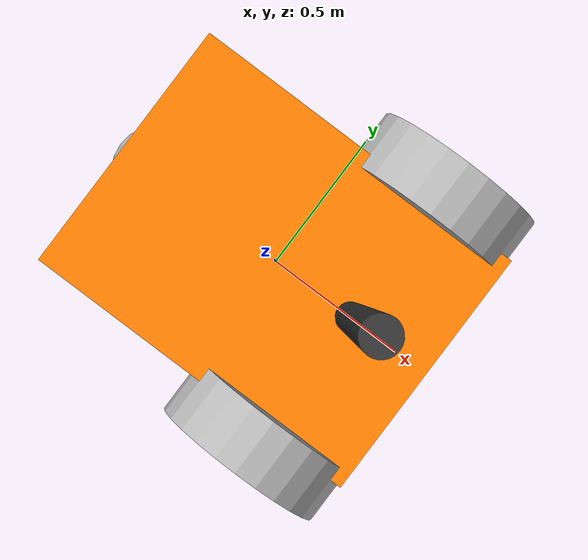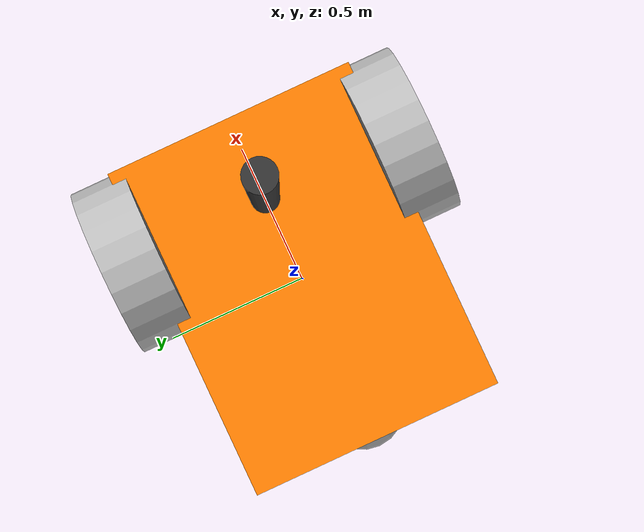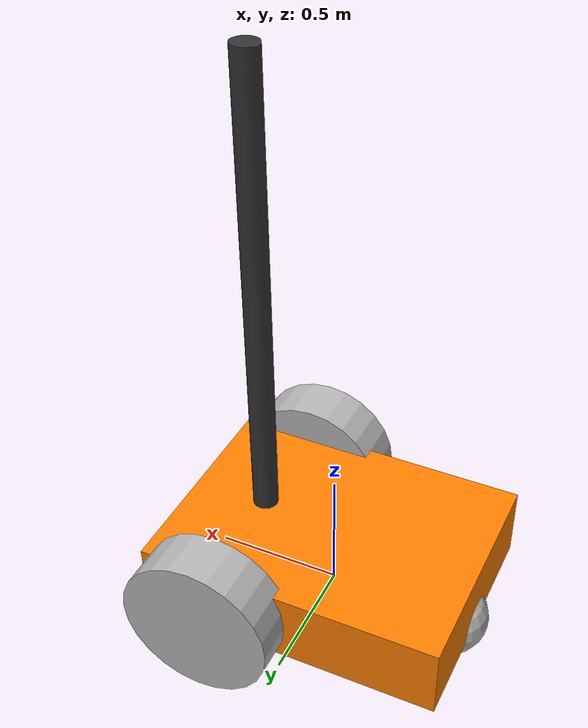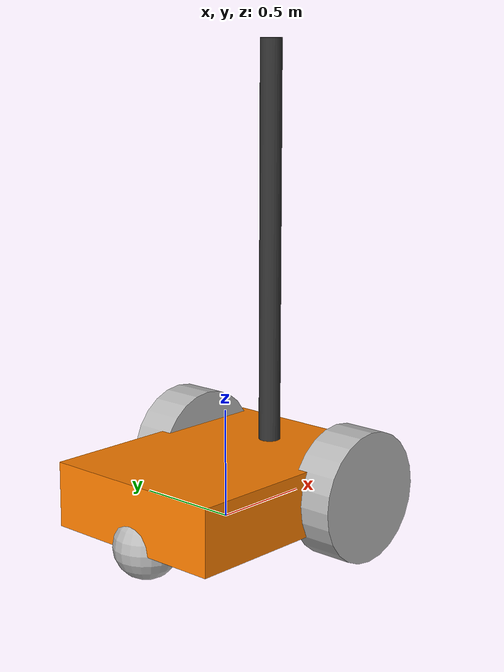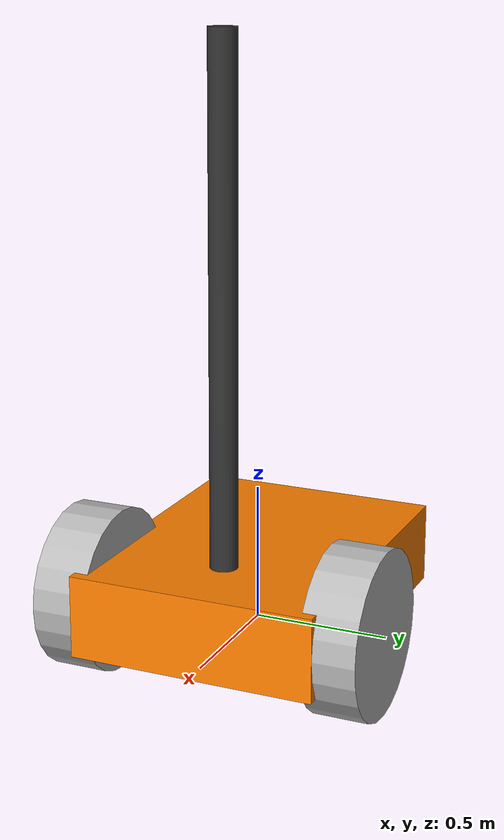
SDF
<?xml version="1.0" ?>
<sdf version="1.8">
    <model name="shipyard_robot">
        <self_collide>false</self_collide>

        <link name="base_link">
            <pose>0 0 0.15 0 0 0</pose>
            <inertial>
                <mass>50.0</mass>
                <pose>-0.3 0 -0.1 0 0 0</pose>
                <inertia>
                    <ixx>2.0</ixx><iyy>2.0</iyy><izz>2.0</izz>
                </inertia>
            </inertial>
            <collision name="collision">
                <geometry><box><size>1.2 0.9 0.3</size></box></geometry>
            </collision>
            <visual name="visual">
                <geometry><box><size>1.2 0.9 0.3</size></box></geometry>
                <material><ambient>1 0.5 0 1</ambient><diffuse>1 0.5 0 1</diffuse></material>
            </visual>

            <visual name="mast">
                <pose>0.3 0 1 0 0 0</pose>
                <geometry><cylinder><radius>0.05</radius><length>2.0</length></cylinder></geometry>
                <material><ambient>0.2 0.2 0.2 1</ambient><diffuse>0.2 0.2 0.2 1</diffuse></material>
            </visual>
        </link>

        <link name="left_wheel">
            <pose>0.3 0.5 0.15 -1.5708 0 0</pose>
            <collision name="collision">
                <geometry><sphere><radius>0.3</radius></sphere></geometry>
                <surface><friction><ode><mu>1.0</mu><mu2>1.0</mu2></ode></friction></surface>
            </collision>
            <visual name="visual">
                <geometry><cylinder><radius>0.3</radius><length>0.2</length></cylinder></geometry>
            </visual>
        </link>

        <link name="right_wheel">
            <pose>0.3 -0.5 0.15 -1.5708 0 0</pose>
            <collision name="collision">
                <geometry><sphere><radius>0.3</radius></sphere></geometry>
                <surface><friction><ode><mu>1.0</mu><mu2>1.0</mu2></ode></friction></surface>
            </collision>
            <visual name="visual">
                <geometry><cylinder><radius>0.3</radius><length>0.2</length></cylinder></geometry>
            </visual>
        </link>

        <link name="caster">
            <pose>-0.5 0 0 0 0 0</pose>
            <collision name="collision">
                <geometry><sphere><radius>0.15</radius></sphere></geometry>
                <surface><friction><ode><mu>0</mu><mu2>0</mu2></ode></friction></surface>
            </collision>
            <visual name="visual">
                <geometry><sphere><radius>0.15</radius></sphere></geometry>
            </visual>
        </link>

        <joint name="left_wheel_joint" type="revolute">
            <parent>base_link</parent><child>left_wheel</child>
            <axis>
                <xyz>0 0 1</xyz>
                <dynamics>
                    <damping>0.1</damping> <friction>0.1</friction>
                </dynamics>
            </axis>
        </joint>
        <joint name="right_wheel_joint" type="revolute">
            <parent>base_link</parent><child>right_wheel</child>
            <axis>
                <xyz>0 0 1</xyz>
                <dynamics>
                    <damping>0.1</damping> <friction>0.1</friction>
                </dynamics>
            </axis>
        </joint>
        <joint name="caster_wheel_joint" type="fixed">
            <parent>base_link</parent><child>caster</child>
        </joint>

        <link name="lidar_link">
            <pose>0.3 0 2.2 0 0 0</pose>
            <sensor name="gpu_lidar" type="gpu_lidar">
                <update_rate>10</update_rate>
                <lidar>
                    <scan>
                        <horizontal><samples>640</samples><resolution>1</resolution><min_angle>-3.14</min_angle><max_angle>3.14</max_angle></horizontal>
                        <vertical><samples>16</samples><resolution>1</resolution><min_angle>-0.261799</min_angle> <max_angle>0.261799</max_angle></vertical>
                    </scan>
                    <range><min>0.1</min><max>30.0</max></range>
                </lidar>
            </sensor>
        </link>

        <joint name="lidar_joint" type="fixed"><parent>base_link</parent><child>lidar_link</child></joint>

        <link name="camera_link">
            <pose>0.3 0 1.8 0 0 0</pose>
            <sensor name="camera_left" type="camera">
                <pose>0 0.1 0 0 0 1.5708</pose>
                <update_rate>30</update_rate>
                <camera><horizontal_fov>1.05</horizontal_fov><image><width>800</width><height>600</height></image></camera>
            </sensor>
            <sensor name="camera_right" type="camera">
                <pose>0 -0.1 0 0 0 -1.5708</pose>
                <update_rate>30</update_rate>
                <camera><horizontal_fov>1.05</horizontal_fov><image><width>800</width><height>600</height></image></camera>
            </sensor>
        </link>

        <joint name="camera_joint" type="fixed"><parent>base_link</parent><child>camera_link</child></joint>

        <link name="gps_link">
            <pose>0 0 0 0 0 0</pose>
            <sensor name="navsat" type="navsat">
                <always_on>1</always_on>
                <update_rate>1</update_rate>
            </sensor>
        </link>

        <joint name="gps_joint" type="fixed">
            <parent>base_link</parent>
            <child>gps_link</child>
        </joint>

        <plugin filename="gz-sim-diff-drive-system" name="gz::sim::systems::DiffDrive">
            <left_joint>left_wheel_joint</left_joint>
            <right_joint>right_wheel_joint</right_joint>
            <wheel_separation>1.1</wheel_separation>
            <wheel_radius>0.3</wheel_radius>

            <odom_topic>/model/robot/odometry</odom_topic>
            <tf_topic>/model/robot/tf</tf_topic> <frame_id>odom</frame_id>
            <child_frame_id>robot/base_link</child_frame_id>
            <publish_odom_tf>true</publish_odom_tf>
        </plugin>
    </model>
</sdf>
